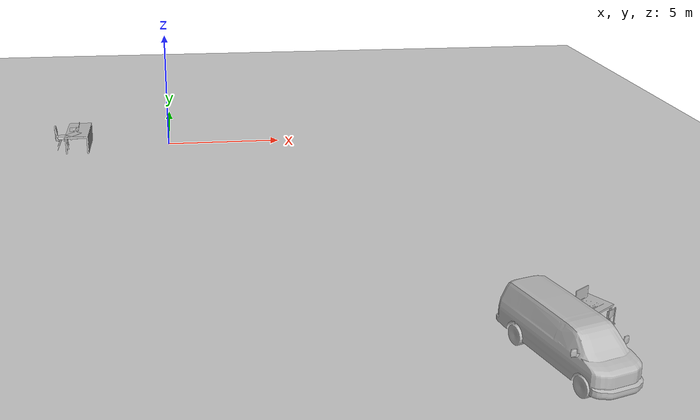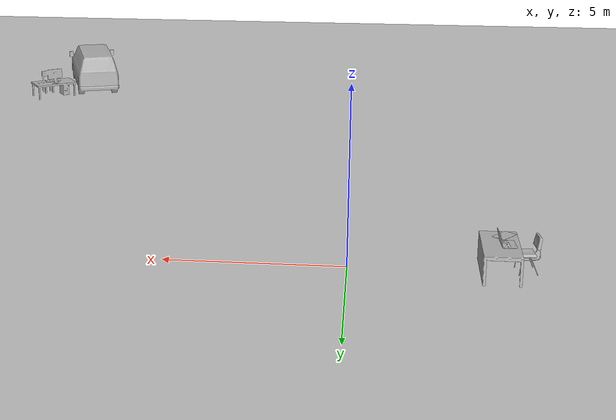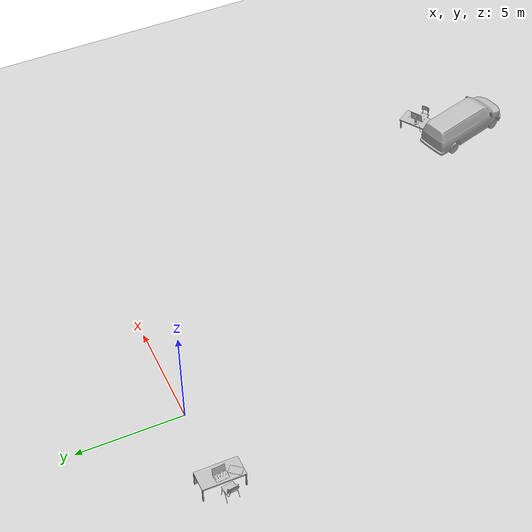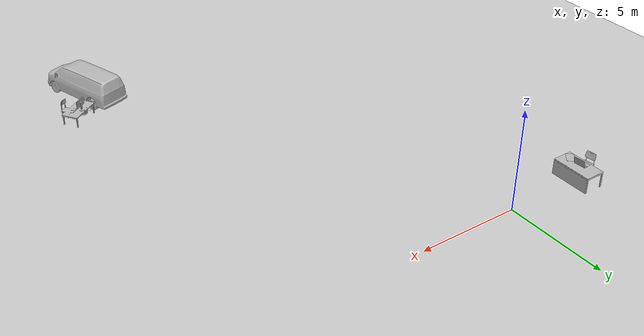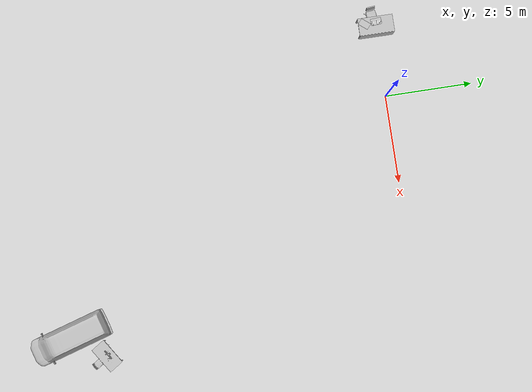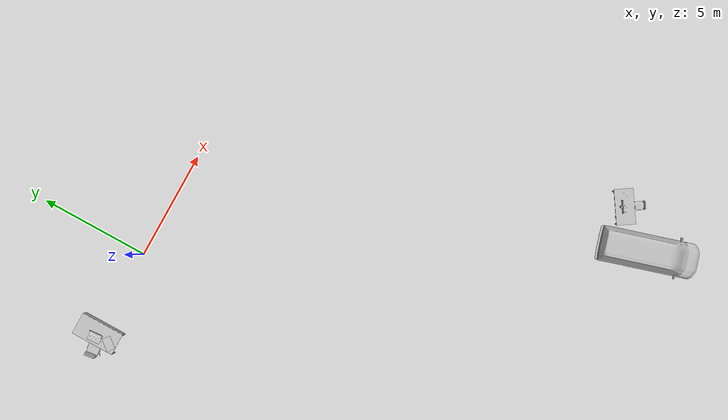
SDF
<sdf version="1.7">
 <world name="default">
  <physics type="ode">
   <ode>
    <solver>
     <type>quick</type>
     <iters>100</iters>
     <sor>1</sor>
     <use_dynamic_moi_rescaling>0</use_dynamic_moi_rescaling>
    </solver>
    <constraints>
     <cfm>0</cfm>
     <erp>0.2</erp>
     <contact_max_correcting_vel>0.1</contact_max_correcting_vel>
     <contact_surface_layer>0</contact_surface_layer>
    </constraints>
   </ode>
   <real_time_update_rate>-1</real_time_update_rate>
   <max_step_size>0.001</max_step_size>
   <real_time_factor>1</real_time_factor>
  </physics>
  <gravity>0 0 -9.8</gravity>
  <light name="sun" type="directional">
   <pose>0 0 10 0 -0 0</pose>
   <diffuse>0.8 0.8 0.8 1</diffuse>
   <specular>0.2 0.2 0.2 1</specular>
   <attenuation>
    <range>1000</range>
    <constant>0.9</constant>
    <linear>0.01</linear>
    <quadratic>0.001</quadratic>
   </attenuation>
   <direction>-0.5 0.1 -0.9</direction>
   <spot><inner_angle>0</inner_angle><outer_angle>0</outer_angle><falloff>0</falloff></spot>
  </light>
  <model name="ground_plane">
   <static>1</static>
   <link name="link">
    <collision name="collision">
     <geometry><plane><normal>0 0 1</normal><size>5000 5000</size></plane></geometry>
     <surface><friction><ode><mu>100</mu><mu2>50</mu2></ode></friction></surface>
    </collision>
    <visual name="runway">
     <pose>0 0 0.005 0 -0 0</pose>
     <cast_shadows>0</cast_shadows>
     <geometry><plane><normal>0 0 1</normal><size>1829 45</size></plane></geometry>
     <material>
      <script><uri>file://media/materials/scripts/gazebo.material</uri><name>Gazebo/Runway</name></script>
     </material>
    </visual>
    <visual name="grass">
     <pose>0 0 -0.1 0 -0 0</pose>
     <cast_shadows>0</cast_shadows>
     <geometry><plane><normal>0 0 1</normal><size>5000 5000</size></plane></geometry>
     <material>
      <script><uri>file://media/materials/scripts/gazebo.material</uri><name>Gazebo/Grass</name></script>
     </material>
    </visual>
   </link>
  </model>
  <model name="hacker_van">
   <static>1</static>
   <link name="base_link">
    <collision name="base_collision">
     <geometry><mesh><scale>1 1 1</scale><uri>model://hacker_van/meshes/van.dae</uri></mesh></geometry>
     <surface><friction><ode><mu>1</mu><mu2>1</mu2></ode></friction></surface>
    </collision>
    <visual name="base_visual">
     <geometry><mesh><scale>1 1 1</scale><uri>model://hacker_van/meshes/van.dae</uri></mesh></geometry>
    </visual>
   </link>
   <pose>11.2442 -20.6449 0.05 0 -0 0.294355</pose>
  </model>
  <model name="hacker_desk">
   <static>1</static>
   <link name="base_link">
    <collision name="base_collision">
     <geometry><mesh><scale>1 1 1</scale><uri>model://hacker_desk/meshes/hacker_desk.dae</uri></mesh></geometry>
     <surface><friction><ode><mu>1</mu><mu2>1</mu2></ode></friction></surface>
    </collision>
    <visual name="base_visual">
     <geometry><mesh><scale>1 1 1</scale><uri>model://hacker_desk/meshes/hacker_desk.dae</uri></mesh></geometry>
    </visual>
   </link>
   <pose>12.2159 -17.6994 0.001958 0 0 -0.989183</pose>
  </model>
  <model name="gcs_table">
   <static>1</static>
   <link name="base_link">
    <collision name="base_collision">
     <geometry><mesh><scale>1 1 1</scale><uri>model://gcs_table/meshes/gcs_table.dae</uri></mesh></geometry>
     <surface><friction><ode><mu>1</mu><mu2>1</mu2></ode></friction></surface>
    </collision>
    <visual name="base_visual">
     <geometry><mesh><scale>1 1 1</scale><uri>model://gcs_table/meshes/gcs_table.dae</uri></mesh></geometry>
    </visual>
   </link>
   <pose>-4 0 0 0 -0 0</pose>
  </model>
  <model name="gcs_chair">
   <static>1</static>
   <link name="base_link">
    <collision name="base_collision">
     <geometry><mesh><scale>1 1 1</scale><uri>model://gcs_chair/meshes/gcs_chair.dae</uri></mesh></geometry>
     <surface><friction><ode><mu>1</mu><mu2>1</mu2></ode></friction></surface>
    </collision>
    <visual name="base_visual">
     <geometry><mesh><scale>1 1 1</scale><uri>model://gcs_chair/meshes/gcs_chair.dae</uri></mesh></geometry>
    </visual>
   </link>
   <pose>-4.41943 -0.415139 0 0 -0 1.68293</pose>
  </model>
  <model name="laptop">
   <static>1</static>
   <link name="base_link">
    <collision name="base_collision">
     <geometry><mesh><scale>1 1 1</scale><uri>model://laptop/meshes/laptop.dae</uri></mesh></geometry>
     <surface><friction><ode><mu>1</mu><mu2>1</mu2></ode></friction></surface>
    </collision>
    <visual name="base_visual">
     <geometry><mesh><scale>1 1 1</scale><uri>model://laptop/meshes/laptop.dae</uri></mesh></geometry>
    </visual>
   </link>
   <pose>-4.04083 -0.118429 0.809145 0 0 -1.90525</pose>
  </model>
  <magnetic_field>6e-06 2.3e-05 -4.2e-05</magnetic_field>
  <atmosphere type="adiabatic"/>
  <scene><ambient>0.4 0.4 0.4 1</ambient><background>0.7 0.7 0.7 1</background><shadows>1</shadows></scene>
  <audio><device>default</device></audio>
  <spherical_coordinates>
   <surface_model>EARTH_WGS84</surface_model>
   <latitude_deg>0</latitude_deg>
   <longitude_deg>0</longitude_deg>
   <elevation>0</elevation>
   <heading_deg>0</heading_deg>
  </spherical_coordinates>
 </world>
</sdf>
